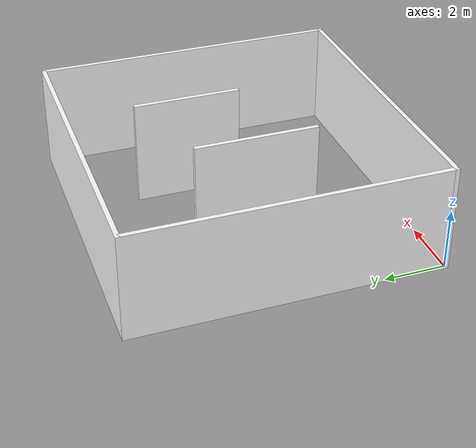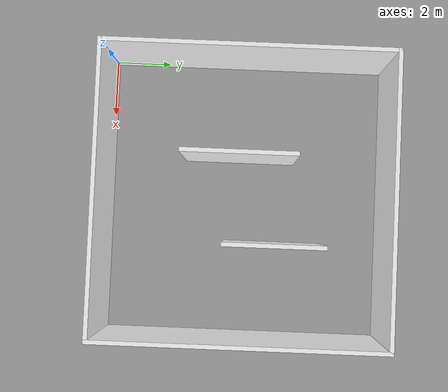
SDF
<?xml version='1.0'?>
<sdf version='1.7'>
  <model name='small_env2'>
    <pose>5 5 0 0 -0 0</pose>
    <link name='Wall_0'>
      <collision name='Wall_0_Collision'>
        <geometry>
          <box>
            <size>10.15 0.15 3.5</size>
          </box>
        </geometry>
        <pose>0 0 1.75 0 -0 0</pose>
      </collision>
      <visual name='Wall_0_Visual'>
        <pose>0 0 1.75 0 -0 0</pose>
        <geometry>
          <box>
            <size>10.15 0.15 3.5</size>
          </box>
        </geometry>
        <material>
          <script>
            <uri>model://small_env2/materials/scripts</uri>
            <uri>model://small_env2/materials/textures</uri>
            <name>wall7/Image </name>
          </script>
          <ambient>1 1 1 1</ambient>
        </material>
        <meta>
          <layer>0</layer>
        </meta>
      </visual>
      <pose>-5 -0 0 0 -0 1.5708</pose>
    </link>
    <link name='Wall_1'>
      <collision name='Wall_1_Collision'>
        <geometry>
          <box>
            <size>10.15 0.15 3.5</size>
          </box>
        </geometry>
        <pose>0 0 1.75 0 -0 0</pose>
      </collision>
      <visual name='Wall_1_Visual'>
        <pose>0 0 1.75 0 -0 0</pose>
        <geometry>
          <box>
            <size>10.15 0.15 3.5</size>
          </box>
        </geometry>
        <material>
          <script>
            <uri>model://small_env2/materials/scripts</uri>
            <uri>model://small_env2/materials/textures</uri>
            <name>wall1/Image </name>
          </script>
          <ambient>1 1 1 1</ambient>
        </material>
        <meta>
          <layer>0</layer>
        </meta>
      </visual>
      <pose>-0 5 0 0 -0 0</pose>
    </link>
    <link name='Wall_2'>
      <collision name='Wall_2_Collision'>
        <geometry>
          <box>
            <size>10.15 0.15 3.5</size>
          </box>
        </geometry>
        <pose>0 0 1.75 0 -0 0</pose>
      </collision>
      <visual name='Wall_2_Visual'>
        <pose>0 0 1.75 0 -0 0</pose>
        <geometry>
          <box>
            <size>10.15 0.15 3.5</size>
          </box>
        </geometry>
        <material>
          <script>
            <uri>model://small_env2/materials/scripts</uri>
            <uri>model://small_env2/materials/textures</uri>
            <name>wall2/Image </name>
          </script>
          <ambient>1 1 1 1</ambient>
        </material>
        <meta>
          <layer>0</layer>
        </meta>
      </visual>
      <pose>5 -0 0 0 -0 -1.5708</pose>
    </link>
    <link name='Wall_3'>
      <collision name='Wall_3_Collision'>
        <geometry>
          <box>
            <size>10.15 0.15 3.5</size>
          </box>
        </geometry>
        <pose>0 0 1.75 0 -0 0</pose>
      </collision>
      <visual name='Wall_3_Visual'>
        <pose>0 0 1.75 0 -0 0</pose>
        <geometry>
          <box>
            <size>10.15 0.15 3.5</size>
          </box>
        </geometry>
        <material>
          <script>
            <uri>model://small_env2/materials/scripts</uri>
            <uri>model://small_env2/materials/textures</uri>
            <name>wall3/Image </name>
          </script>
          <ambient>1 1 1 1</ambient>
        </material>
        <meta>
          <layer>0</layer>
        </meta>
      </visual>
      <pose>-0 -5 0 0 -0 3.14159</pose>
    </link>
    <link name='Wall_5'>
      <collision name='Wall_5_Collision'>
        <geometry>
          <box>
            <size>4 0.15 3.5</size>
          </box>
        </geometry>
        <pose>0 0 1.75 0 -0 0</pose>
      </collision>
      <visual name='Wall_5_Visual'>
        <pose>0 0 1.75 0 -0 0</pose>
        <geometry>
          <box>
            <size>4 0.15 3.5</size>
          </box>
        </geometry>
        <material>
          <script>
            <uri>model://small_env2/materials/scripts</uri>
            <uri>model://small_env2/materials/textures</uri>
            <name>wall8/Image </name>
          </script>
          <ambient>1 1 1 1</ambient>
        </material>
        <meta>
          <layer>0</layer>
        </meta>
      </visual>
      <pose>-1.422 -0.226 0 0 -0 -1.5708</pose>
    </link>
    <link name='Wall_7'>
      <collision name='Wall_7_Collision'>
        <geometry>
          <box>
            <size>3.5 0.15 3.5</size>
          </box>
        </geometry>
        <pose>0 0 1.75 0 -0 0</pose>
      </collision>
      <visual name='Wall_7_Visual'>
        <pose>0 0 1.75 0 -0 0</pose>
        <geometry>
          <box>
            <size>3.5 0.15 3.5</size>
          </box>
        </geometry>
        <material>
          <script>
            <uri>model://small_env2/materials/scripts</uri>
            <uri>model://small_env2/materials/textures</uri>
            <name>wall5/Image </name>
          </script>
          <ambient>1 1 1 1</ambient>
        </material>
        <meta>
          <layer>0</layer>
        </meta>
      </visual>
      <pose>1.648 1.044 0 0 -0 -1.5708</pose>
    </link>
    <static>1</static>
  </model>
</sdf>
